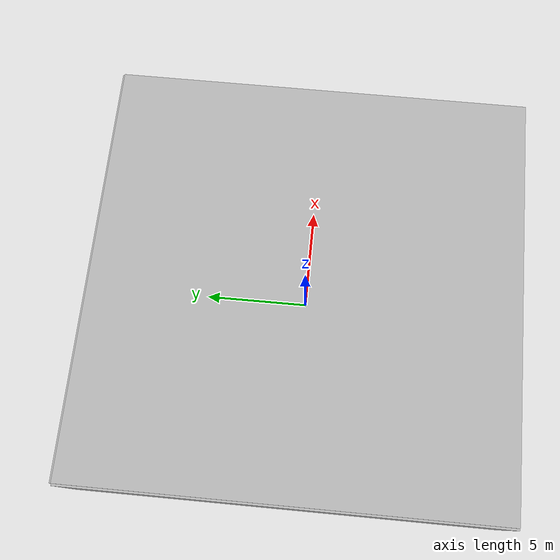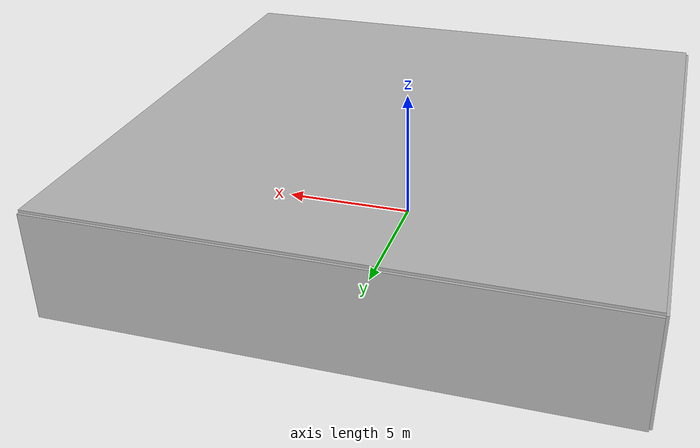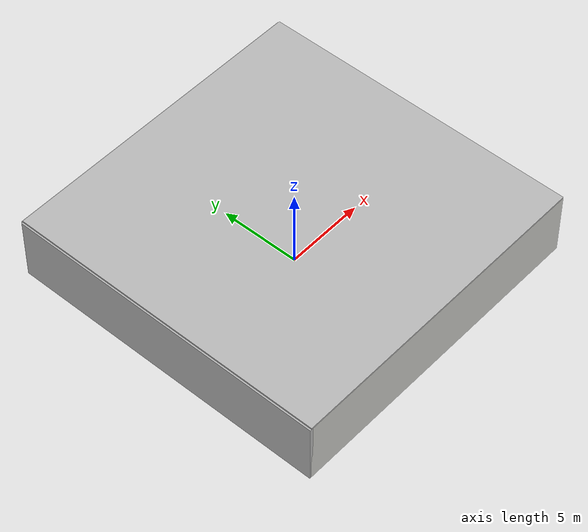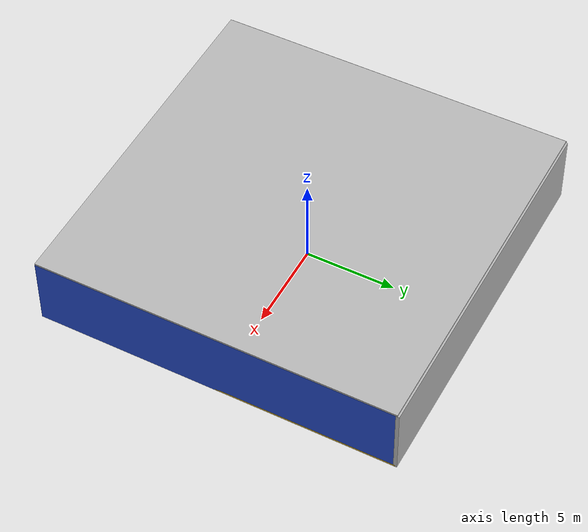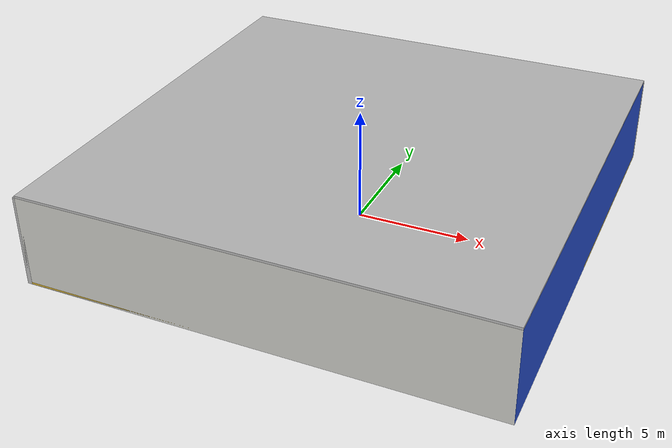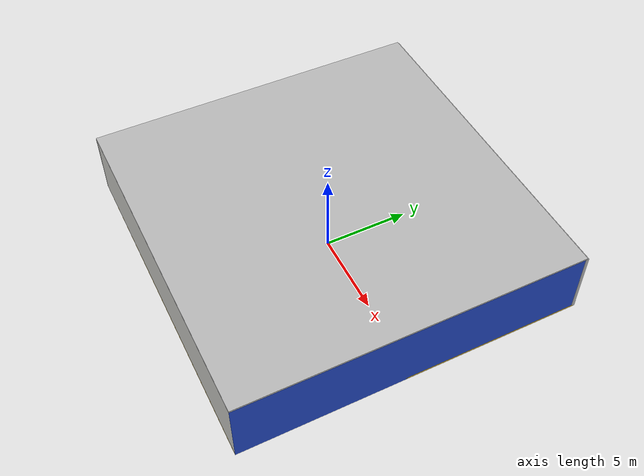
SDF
<sdf version="1.4">
 <world name="default">
  <physics type="ode">
   <max_step_size>0.001</max_step_size>
   <real_time_factor>1</real_time_factor>
   <real_time_update_rate>1000</real_time_update_rate>
   <gravity>0 0 -9.8</gravity>
  </physics>
  <scene><ambient>0.4 0.4 0.4 1</ambient><background>0.7 0.7 0.7 1</background><shadows>1</shadows></scene>
  <model name="Surrounding">
   <static>1</static>
   <link name="Ceiling">
    <collision name="Ceiling_Collision"><geometry><box><size>20 20 0.1</size></box></geometry></collision>
    <visual name="Ceiling_Visual">
     <geometry><box><size>20 20 0.1</size></box></geometry>
     <material>
      <script><uri>file://media/materials/scripts/gazebo.material</uri><name>Gazebo/Pioneer2Body</name></script>
     </material>
    </visual>
    <pose>0 0 4.05 0 0 0</pose>
   </link>
   <link name="Wall_South">
    <collision name="Wall_South_Collision">
     <geometry><box><size>20 0 4</size></box></geometry>
     <pose>0 0 2 0 -0 0</pose>
    </collision>
    <visual name="Wall_South_Visual">
     <pose>0 0 2 0 -0 0</pose>
     <geometry><box><size>20 0 4</size></box></geometry>
     <material>
      <script><uri>file://media/materials/scripts/gazebo.material</uri><name>Gazebo/CeilingTiled</name></script>
     </material>
    </visual>
    <velocity_decay><linear>0</linear><angular>0</angular></velocity_decay>
    <pose>0 -10 0 0 -0 0</pose>
   </link>
   <link name="Wall_East">
    <collision name="Wall_21_Collision">
     <geometry><box><size>20 0 4</size></box></geometry>
     <pose>0 0 2 0 -0 0</pose>
    </collision>
    <visual name="Wall_21_Visual">
     <pose>0 0 2 0 -0 0</pose>
     <geometry><box><size>20 0 4</size></box></geometry>
     <material>
      <script><uri>file://media/materials/scripts/gazebo.material</uri><name>Gazebo/BlueLaser</name></script>
     </material>
    </visual>
    <velocity_decay><linear>0</linear><angular>0</angular></velocity_decay>
    <pose>10 0 0 0 -0 1.5708</pose>
   </link>
   <link name="Wall_North">
    <collision name="Wall_22_Collision">
     <geometry><box><size>20 0.2 4</size></box></geometry>
     <pose>0 0 2 0 -0 0</pose>
    </collision>
    <visual name="Wall_22_Visual">
     <pose>0 0 2 0 -0 0</pose>
     <geometry><box><size>20 0.2 4</size></box></geometry>
     <material>
      <script><uri>file://media/materials/scripts/gazebo.material</uri><name>Gazebo/PioneerBody</name></script>
     </material>
    </visual>
    <velocity_decay><linear>0</linear><angular>0</angular></velocity_decay>
    <pose>0 10 0 0 -0 0</pose>
   </link>
   <link name="Wall_West">
    <collision name="Wall_23_Collision">
     <geometry><box><size>20 0.2 4</size></box></geometry>
     <pose>0 0 2 0 -0 0</pose>
    </collision>
    <visual name="Wall_23_Visual">
     <pose>0 0 2 0 -0 0</pose>
     <geometry><box><size>20 0.2 4</size></box></geometry>
     <material>
      <script><uri>file://media/materials/scripts/gazebo.material</uri><name>Gazebo/Pioneer2Body</name></script>
     </material>
    </visual>
    <velocity_decay><linear>0</linear><angular>0</angular></velocity_decay>
    <pose>-10 0 0 0 0 -1.5708</pose>
   </link>
   <link name="Ground_link">
    <collision name="collision">
     <pose>0 0 .05 0 -0 0</pose>
     <geometry><box><size>20 20 0.1</size></box></geometry>
    </collision>
    <visual name="visual">
     <pose>0 0 .05 0 -0 0</pose>
     <geometry><box><size>20 20 0.1</size></box></geometry>
     <material>
      <script><uri>file://media/materials/scripts/gazebo.material</uri><name>Gazebo/Gold</name></script>
     </material>
    </visual>
   </link>
   <static>1</static>
  </model>
  <spherical_coordinates>
   <surface_model>EARTH_WGS84</surface_model>
   <latitude_deg>0</latitude_deg>
   <longitude_deg>0</longitude_deg>
   <elevation>0</elevation>
   <heading_deg>0</heading_deg>
  </spherical_coordinates>
  <light name="lightball_0" type="diffuse">
   <diffuse>0.8 0.8 0.8 1</diffuse>
   <specular>0.2 0.2 0.2 1</specular>
   <attenuation>
    <range>100</range>
    <constant>0.7</constant>
    <linear>0.01</linear>
    <quadratic>0.001</quadratic>
   </attenuation>
   <direction>-0.5 0.1 -0.9</direction>
   <pose>-6.85074480034 -8.75547638057 0.515895715745 0 0 0</pose>
  </light>
  <light name="lightball_1" type="diffuse">
   <diffuse>0.8 0.8 0.8 1</diffuse>
   <specular>0.2 0.2 0.2 1</specular>
   <attenuation>
    <range>100</range>
    <constant>0.7</constant>
    <linear>0.01</linear>
    <quadratic>0.001</quadratic>
   </attenuation>
   <direction>-0.5 0.1 -0.9</direction>
   <pose>-2.59293635558 9.01844919752 3.06551673662 0 0 0</pose>
  </light>
  <light name="lightball_2" type="diffuse">
   <diffuse>0.8 0.8 0.8 1</diffuse>
   <specular>0.2 0.2 0.2 1</specular>
   <attenuation>
    <range>100</range>
    <constant>0.7</constant>
    <linear>0.01</linear>
    <quadratic>0.001</quadratic>
   </attenuation>
   <direction>-0.5 0.1 -0.9</direction>
   <pose>2.72993370517 4.271219149 3.77179351354 0 0 0</pose>
  </light>
  <light name="lightball_3" type="diffuse">
   <diffuse>0.8 0.8 0.8 1</diffuse>
   <specular>0.2 0.2 0.2 1</specular>
   <attenuation>
    <range>100</range>
    <constant>0.7</constant>
    <linear>0.01</linear>
    <quadratic>0.001</quadratic>
   </attenuation>
   <direction>-0.5 0.1 -0.9</direction>
   <pose>-5.53011357363 -0.137146571558 1.42570463203 0 0 0</pose>
  </light>
  <light name="lightball_4" type="diffuse">
   <diffuse>0.8 0.8 0.8 1</diffuse>
   <specular>0.2 0.2 0.2 1</specular>
   <attenuation>
    <range>100</range>
    <constant>0.7</constant>
    <linear>0.01</linear>
    <quadratic>0.001</quadratic>
   </attenuation>
   <direction>-0.5 0.1 -0.9</direction>
   <pose>9.76034676193 6.29585106913 1.63770479298 0 0 0</pose>
  </light>
  <light name="lightball_5" type="diffuse">
   <diffuse>0.8 0.8 0.8 1</diffuse>
   <specular>0.2 0.2 0.2 1</specular>
   <attenuation>
    <range>100</range>
    <constant>0.7</constant>
    <linear>0.01</linear>
    <quadratic>0.001</quadratic>
   </attenuation>
   <direction>-0.5 0.1 -0.9</direction>
   <pose>3.95423594952 -7.22234792538 1.76613276271 0 0 0</pose>
  </light>
  <light name="lightball_6" type="diffuse">
   <diffuse>0.8 0.8 0.8 1</diffuse>
   <specular>0.2 0.2 0.2 1</specular>
   <attenuation>
    <range>100</range>
    <constant>0.7</constant>
    <linear>0.01</linear>
    <quadratic>0.001</quadratic>
   </attenuation>
   <direction>-0.5 0.1 -0.9</direction>
   <pose>-5.10816509182 3.37445424894 3.74805971376 0 0 0</pose>
  </light>
  <light name="lightball_7" type="diffuse">
   <diffuse>0.8 0.8 0.8 1</diffuse>
   <specular>0.2 0.2 0.2 1</specular>
   <attenuation>
    <range>100</range>
    <constant>0.7</constant>
    <linear>0.01</linear>
    <quadratic>0.001</quadratic>
   </attenuation>
   <direction>-0.5 0.1 -0.9</direction>
   <pose>8.20542880271 -5.47139817083 1.37418365787 0 0 0</pose>
  </light>
  <light name="lightball_8" type="diffuse">
   <diffuse>0.8 0.8 0.8 1</diffuse>
   <specular>0.2 0.2 0.2 1</specular>
   <attenuation>
    <range>100</range>
    <constant>0.7</constant>
    <linear>0.01</linear>
    <quadratic>0.001</quadratic>
   </attenuation>
   <direction>-0.5 0.1 -0.9</direction>
   <pose>2.76229174497 -7.21663401734 0.730333443453 0 0 0</pose>
  </light>
  <light name="lightball_9" type="diffuse">
   <diffuse>0.8 0.8 0.8 1</diffuse>
   <specular>0.2 0.2 0.2 1</specular>
   <attenuation>
    <range>100</range>
    <constant>0.7</constant>
    <linear>0.01</linear>
    <quadratic>0.001</quadratic>
   </attenuation>
   <direction>-0.5 0.1 -0.9</direction>
   <pose>9.30425700339 8.30638207876 3.58149867387 0 0 0</pose>
  </light>
  <light name="lightball_10" type="diffuse">
   <diffuse>0.8 0.8 0.8 1</diffuse>
   <specular>0.2 0.2 0.2 1</specular>
   <attenuation>
    <range>100</range>
    <constant>0.7</constant>
    <linear>0.01</linear>
    <quadratic>0.001</quadratic>
   </attenuation>
   <direction>-0.5 0.1 -0.9</direction>
   <pose>-5.88217329146 -4.68010046049 2.19014841192 0 0 0</pose>
  </light>
  <include>
   <uri>model://construction_cone</uri>
   <pose>-8.52223302584 -3.86964360119 0 0 0 0.407606015447</pose>
  </include>
  <include>
   <uri>model://robocup_3Dsim_goal</uri>
   <pose>-1.983090624 -0.682729906756 0 0 0 3.1128035489</pose>
  </include>
  <include><uri>model://cabinet</uri><pose>0.799889196097 -1.30894882978 0 0 0 1.2964346559</pose></include>
  <include>
   <uri>model://construction_cone</uri>
   <pose>2.12558499864 1.52812129102 0 0 0 2.40304507082</pose>
  </include>
  <include>
   <uri>model://textured_shapes</uri>
   <pose>1.85800375105 5.03017542394 0 0 0 1.07655928713</pose>
  </include>
  <include><uri>model://cabinet</uri><pose>5.29003158931 0.356276632814 0 0 0 2.99582151382</pose></include>
  <include><uri>model://cabinet</uri><pose>8.4047999958 -1.33511724834 0 0 0 1.57604585045</pose></include>
  <include>
   <uri>model://construction_cone</uri>
   <pose>8.66175261404 5.38955172191 0 0 0 1.8318817191</pose>
  </include>
 </world>
</sdf>

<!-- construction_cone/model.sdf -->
<sdf version="1.5">
  <model name="Construction Cone">
    <link name="link">
      <collision name="collision">
        <geometry>
          <mesh>
            <scale>10 10 10</scale>
            <uri>file://isr-testbed/construction_cone/meshes/construction_cone.dae</uri>
          </mesh>
        </geometry>
      </collision>
      <visual name="visual">
        <geometry>
          <mesh>
            <scale>10 10 10</scale>
            <uri>file://isr-testbed/construction_cone/meshes/construction_cone.dae</uri>
          </mesh>
        </geometry>
      </visual>
    </link>
  </model>
</sdf>

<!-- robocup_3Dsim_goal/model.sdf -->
<sdf version="1.5">
  <model name="robocup_3d_goal">
    <static>true</static>
    <link name="left_post">
      <pose>0 1.05 0.45 0 0 0</pose>
      <collision name="collision">
        <geometry>
          <cylinder>
            <radius>0.05</radius>
            <length>0.9</length>
          </cylinder>
        </geometry>
      </collision>
      <visual name="visual">
        <geometry>
          <cylinder>
            <radius>0.05</radius>
            <length>0.9</length>
          </cylinder>
        </geometry>
        <material>
          <script>
            <uri>file://media/materials/scripts/gazebo.material</uri>
            <name>Gazebo/ZincYellow</name>
          </script>
        </material>
      </visual>
    </link>
    <link name="left_support_horiz_lower">
      <pose>0.30 1.05 0.01 0 0 0</pose>
      <collision name="collision">
        <geometry>
          <box>
            <size>0.50 0.02 0.02</size>
          </box>
        </geometry>
      </collision>
      <visual name="visual">
        <geometry>
          <box>
            <size>0.50 0.02 0.02</size>
          </box>
        </geometry>
        <material>
          <script>
            <uri>file://media/materials/scripts/gazebo.material</uri>
            <name>Gazebo/White</name>
          </script>
        </material>
      </visual>
    </link>
    <link name="left_support_horiz_upper">
      <pose>0.30 1.05 0.79 0 0 0</pose>
      <collision name="collision">
        <geometry>
          <box>
            <size>0.50 0.02 0.02</size>
          </box>
        </geometry>
      </collision>
      <visual name="visual">
        <geometry>
          <box>
            <size>0.50 0.02 0.02</size>
          </box>
        </geometry>
        <material>
          <script>
            <uri>file://media/materials/scripts/gazebo.material</uri>
            <name>Gazebo/White</name>
          </script>
        </material>
      </visual>
    </link>
    <link name="left_support_vertical">
      <pose>0.56 1.05 0.4 0 1.5708 0</pose>
      <collision name="collision">
        <geometry>
          <box>
            <size>0.80 0.02 0.02</size>
          </box>
        </geometry>
      </collision>
      <visual name="visual">
        <geometry>
          <box>
            <size>0.80 0.02 0.02</size>
          </box>
        </geometry>
        <material>
          <script>
            <uri>file://media/materials/scripts/gazebo.material</uri>
            <name>Gazebo/White</name>
          </script>
        </material>
      </visual>
    </link>
    <link name="right_support_horiz_lower">
      <pose>0.30 -1.05 0.01 0 0 0</pose>
      <collision name="collision">
        <geometry>
          <box>
            <size>0.50 0.02 0.02</size>
          </box>
        </geometry>
      </collision>
      <visual name="visual">
        <geometry>
          <box>
            <size>0.50 0.02 0.02</size>
          </box>
        </geometry>
        <material>
          <script>
            <uri>file://media/materials/scripts/gazebo.material</uri>
            <name>Gazebo/White</name>
          </script>
        </material>
      </visual>
    </link>
    <link name="right_support_horiz_upper">
      <pose>0.30 -1.05 0.79 0 0 0</pose>
      <collision name="collision">
        <geometry>
          <box>
            <size>0.50 0.02 0.02</size>
          </box>
        </geometry>
      </collision>
      <visual name="visual">
        <geometry>
          <box>
            <size>0.50 0.02 0.02</size>
          </box>
        </geometry>
        <material>
          <script>
            <uri>file://media/materials/scripts/gazebo.material</uri>
            <name>Gazebo/White</name>
          </script>
        </material>
      </visual>
    </link>
    <link name="right_support_vertical">
      <pose>0.56 -1.05 0.4 0 1.5708 0</pose>
      <collision name="collision">
        <geometry>
          <box>
            <size>0.80 0.02 0.02</size>
          </box>
        </geometry>
      </collision>
      <visual name="visual">
        <geometry>
          <box>
            <size>0.80 0.02 0.02</size>
          </box>
        </geometry>
        <material>
          <script>
            <uri>file://media/materials/scripts/gazebo.material</uri>
            <name>Gazebo/White</name>
          </script>
        </material>
      </visual>
    </link>
    <link name="center_support_horiz_lower">
      <pose>0.56 0 0.01 0 1.5708 0</pose>
      <collision name="collision">
        <geometry>
          <box>
            <size>0.02 2.08 0.02</size>
          </box>
        </geometry>
      </collision>
      <visual name="visual">
        <geometry>
          <box>
            <size>0.02 2.08 0.02</size>
          </box>
        </geometry>
        <material>
          <script>
            <uri>file://media/materials/scripts/gazebo.material</uri>
            <name>Gazebo/White</name>
          </script>
        </material>
      </visual>
    </link>
    <link name="center_support_horiz_upper">
      <pose>0.56 0 0.79 0 1.5708 0</pose>
      <collision name="collision">
        <geometry>
          <box>
            <size>0.02 2.08 0.02</size>
          </box>
        </geometry>
      </collision>
      <visual name="visual">
        <geometry>
          <box>
            <size>0.02 2.08 0.02</size>
          </box>
        </geometry>
        <material>
          <script>
            <uri>file://media/materials/scripts/gazebo.material</uri>
            <name>Gazebo/White</name>
          </script>
        </material>
      </visual>
    </link>
    <link name="right_post">
      <pose>0 -1.05 0.45 0 0 0</pose>
      <collision name="collision">
        <geometry>
          <cylinder>
            <radius>0.05</radius>
            <length>0.9</length>
          </cylinder>
        </geometry>
      </collision>
      <visual name="visual">
        <geometry>
          <cylinder>
            <radius>0.05</radius>
            <length>0.9</length>
          </cylinder>
        </geometry>
        <material>
          <script>
            <uri>file://media/materials/scripts/gazebo.material</uri>
            <name>Gazebo/ZincYellow</name>
          </script>
        </material>
      </visual>
    </link>
    <link name="crossbar">
      <pose>0 0 0.85 1.57 1.57 0</pose>
      <collision name="collision">
        <geometry>
          <cylinder>
            <radius>0.05</radius>
            <length>2.0</length>
          </cylinder>
        </geometry>
      </collision>
      <visual name="visual">
        <geometry>
          <cylinder>
            <radius>0.05</radius>
            <length>2.0</length>
          </cylinder>
        </geometry>
        <material>
          <script>
            <uri>file://media/materials/scripts/gazebo.material</uri>
            <name>Gazebo/ZincYellow</name>
          </script>
        </material>
      </visual>
    </link>
    <link name="center_net">
      <pose>0.56 0 0.40 0 0 0</pose>
      <collision name="collision">
        <geometry>
          <box>
            <size>0.01 2.1 0.80</size>
          </box>
        </geometry>
      </collision>
      <visual name="visual">
        <geometry>
          <box>
            <size>0.01 2.1 0.80</size>
          </box>
        </geometry>
        <material>
          <script>
            <uri>model://../model_source/models/robocup09_spl_field/materials/scripts/</uri>
            <uri>model://../model_source/models/robocup09_spl_field/materials/textures/</uri>
            <name>RoboCup/Net</name>
          </script>
        </material>
      </visual>
    </link>
    <link name="left_net">
      <pose>0.30 1.05 0.40 0 0 0</pose>
      <collision name="collision">
        <geometry>
          <box>
            <size>0.50 0.01 0.76</size>
          </box>
        </geometry>
      </collision>
      <visual name="visual">
        <geometry>
          <box>
            <size>0.50 0.01 0.76</size>
          </box>
        </geometry>
        <material>
          <script>
            <uri>model://../model_source/models/robocup09_spl_field/materials/scripts/</uri>
            <uri>model://../model_source/models/robocup09_spl_field/materials/textures/</uri>
            <name>RoboCup/Net</name>
          </script>
        </material>
      </visual>
    </link>
    <link name="right_net">
      <pose>0.30 -1.05 0.40 0 0 0</pose>
      <collision name="collision">
        <geometry>
          <box>
            <size>0.50 0.01 0.76</size>
          </box>
        </geometry>
      </collision>
      <visual name="visual">
        <geometry>
          <box>
            <size>0.50 0.01 0.76</size>
          </box>
        </geometry>
        <material>
          <script>
            <uri>model://../model_source/models/robocup09_spl_field/materials/scripts/</uri>
            <uri>model://../model_source/models/robocup09_spl_field/materials/textures/</uri>
            <name>RoboCup/Net</name>
          </script>
        </material>
      </visual>
    </link>
  </model>
</sdf>

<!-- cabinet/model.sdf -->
<sdf version="1.5">
  <model name="cabinet">
    <static>true</static>
    <link name="cabinet_bottom_plate">
      <inertial>
        <pose>0 0 -1 0 0 0</pose>
        <inertia>
          <ixx>2.050000</ixx>
          <ixy>0</ixy>
          <ixz>0</ixz>
          <iyy>2.050000</iyy>
          <iyz>0</iyz>
          <izz>2.050000</izz>
        </inertia>
        <mass>25.000000</mass>
      </inertial>
      <collision name="cabinet_bottom_plate_geom">
        <pose>0 0 0.010000 0 0 0</pose>
        <geometry>
          <box>
            <size>0.450000 0.450000 0.020000</size>
          </box>
        </geometry>
      </collision>
      <visual name="cabinet_bottom_plate_geom_visual">
        <pose>0 0 0.010000 0 0 0</pose>
        <geometry>
          <box>
            <size>0.450000 0.450000 0.020000</size>
          </box>
        </geometry>
        <material>
          <script>
            <uri>model://media/materials/scripts/gazebo.material</uri>
            <name>Gazebo/Wood</name>
          </script>
        </material>
      </visual>
      <collision name="cabinet_bottom_plate_geom_cabinet_back_plate">
        <pose>0.235000 0 0.510000 0 0 0</pose>
        <geometry>
          <box>
            <size>0.020000 0.450000 1.020000</size>
          </box>
        </geometry>
      </collision>
      <visual name="cabinet_bottom_plate_geom_cabinet_back_plate_visual">
        <pose>0.235000 0 0.510000 0 0 0</pose>
        <geometry>
          <box>
            <size>0.020000 0.450000 1.020000</size>
          </box>
        </geometry>
        <material>
          <script>
            <uri>model://media/materials/scripts/gazebo.material</uri>
            <name>Gazebo/Wood</name>
          </script>
        </material>
      </visual>
      <collision name="cabinet_bottom_plate_geom_cabinet_left_plate">
        <pose>0 0.235000 0.510000 0 0 0</pose>
        <geometry>
          <box>
            <size>0.450000 0.020000 1.020000</size>
          </box>
        </geometry>
      </collision>
      <visual name="cabinet_bottom_plate_geom_cabinet_left_plate_visual">
        <pose>0 0.235000 0.510000 0 0 0</pose>
        <geometry>
          <box>
            <size>0.450000 0.020000 1.020000</size>
          </box>
        </geometry>
        <material>
          <script>
            <uri>model://media/materials/scripts/gazebo.material</uri>
            <name>Gazebo/Wood</name>
          </script>
        </material>
      </visual>
      <collision name="cabinet_bottom_plate_geom_cabinet_middle_plate">
        <pose>0 0 0.510000 0 0 0</pose>
        <geometry>
          <box>
            <size>0.450000 0.450000 0.020000</size>
          </box>
        </geometry>
      </collision>
      <visual name="cabinet_bottom_plate_geom_cabinet_middle_plate_visual">
        <pose>0 0 0.510000 0 0 0</pose>
        <geometry>
          <box>
            <size>0.450000 0.450000 0.020000</size>
          </box>
        </geometry>
        <material>
          <script>
            <uri>model://media/materials/scripts/gazebo.material</uri>
            <name>Gazebo/Wood</name>
          </script>
        </material>
      </visual>
      <collision name="cabinet_bottom_plate_geom_cabinet_right_plate">
        <pose>0 -0.235000 0.510000 0 0 0</pose>
        <geometry>
          <box>
            <size>0.450000 0.020000 1.020000</size>
          </box>
        </geometry>
      </collision>
      <visual name="cabinet_bottom_plate_geom_cabinet_right_plate_visual">
        <pose>0 -0.235000 0.510000 0 0 0</pose>
        <geometry>
          <box>
            <size>0.450000 0.020000 1.020000</size>
          </box>
        </geometry>
        <material>
          <script>
            <uri>model://media/materials/scripts/gazebo.material</uri>
            <name>Gazebo/Wood</name>
          </script>
        </material>
      </visual>
      <collision name="cabinet_bottom_plate_geom_cabinet_top_plate">
        <pose>0 0 1.010000 0 0 0</pose>
        <geometry>
          <box>
            <size>0.450000 0.450000 0.020000</size>
          </box>
        </geometry>
      </collision>
      <visual name="cabinet_bottom_plate_geom_cabinet_top_plate_visual">
        <pose>0 0 1.010000 0 0 0</pose>
        <geometry>
          <box>
            <size>0.450000 0.450000 0.020000</size>
          </box>
        </geometry>
        <material>
          <script>
            <uri>model://media/materials/scripts/gazebo.material</uri>
            <name>Gazebo/Wood</name>
          </script>
        </material>
      </visual>
    </link>
  </model>
</sdf>

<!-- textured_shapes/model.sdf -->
<sdf version="1.6">
  <model name="textured_shapes">
    <pose>0 0 0.5 0 0 0</pose>
    <link name="box">
      <pose>0 -1.5 0 0 0 0</pose>
      <collision name="collision">
        <geometry>
          <box>
            <size>1 1 1</size>
          </box>
        </geometry>
      </collision>
      <visual name="visual">
        <geometry>
          <box>
            <size>1 1 1</size>
          </box>
        </geometry>
        <material>
          <script>
            <uri>model://../model_source/models/textured_shapes/materials/scripts</uri>
            <uri>model://../model_source/models/textured_shapes/materials/textures</uri>
            <name>TexturedShape/Squares</name>
          </script>
        </material>
      </visual>
    </link>
    <link name="sphere">
      <collision name="collision">
        <geometry>
          <sphere>
            <radius>0.5</radius>
          </sphere>
        </geometry>
      </collision>
      <visual name="visual">
        <geometry>
          <sphere>
            <radius>0.5</radius>
          </sphere>
        </geometry>
        <material>
          <script>
            <uri>model://../model_source/models/textured_shapes/materials/scripts</uri>
            <uri>model://../model_source/models/textured_shapes/materials/textures</uri>
            <name>TexturedShape/Squares</name>
          </script>
        </material>
      </visual>
    </link>
    <link name="cylinder">
      <pose>0 1.5 0 0 0 0</pose>
      <collision name="collision">
        <geometry>
          <cylinder>
            <radius>0.5</radius>
            <length>1</length>
          </cylinder>
        </geometry>
      </collision>
      <visual name="visual">
        <geometry>
          <cylinder>
            <radius>0.5</radius>
            <length>1</length>
          </cylinder>
        </geometry>
        <material>
          <script>
            <uri>model://../model_source/models/textured_shapes/materials/scripts</uri>
            <uri>model://../model_source/models/textured_shapes/materials/textures</uri>
            <name>TexturedShape/Squares</name>
          </script>
        </material>
      </visual>
    </link>
  </model>
</sdf>
